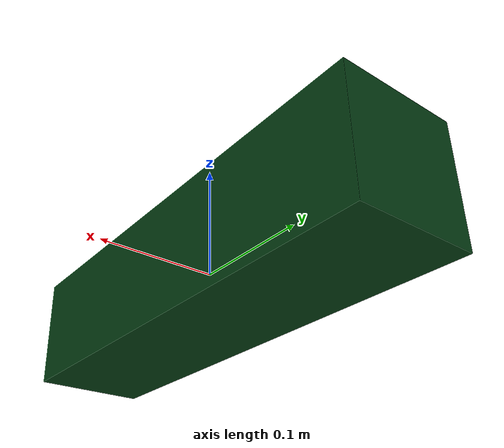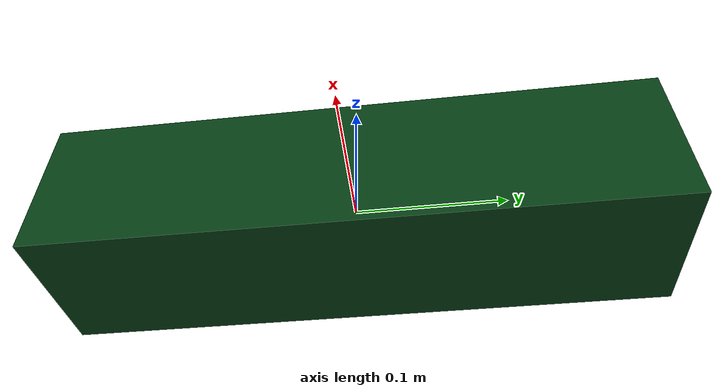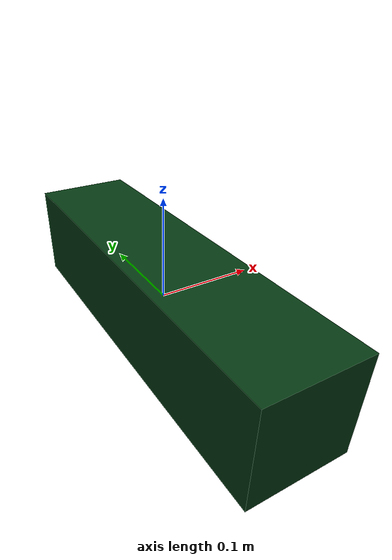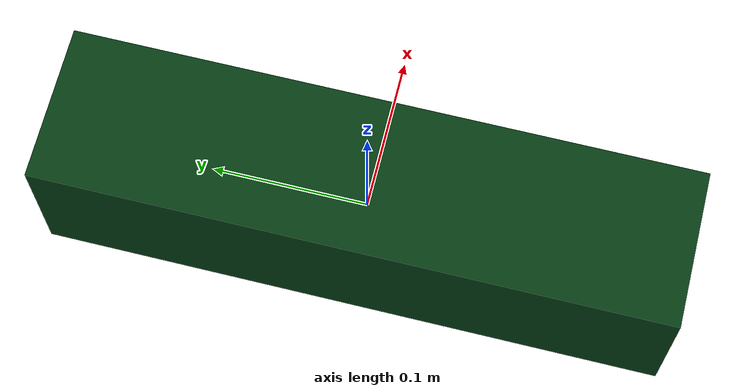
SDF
<?xml version="1.0" ?>
<sdf version="1.10">
    <model name="camera_sensor_model">

        <link name="camera">
        <pose >0.0 0 0.0 0 0 0</pose>
            <visual name='camera visual'>
                <pose>0 0 0 0 0 0</pose>
                <geometry>
                    <box>
                        <size>0.1 0.4 0.1</size>
                    </box>
                </geometry>
                <material>
                    <ambient>0.015996293361446288 0.22696587349938613 0.07036009568874305 1</ambient>
                    <diffuse>0.015996293361446288 0.22696587349938613 0.07036009568874305 1</diffuse>
                    <specular>0.1 0.1 0.1 1</specular>
                    <emissive>0 0 0 1</emissive>
                </material>
            </visual>
            <collision name='camera collision'>
                <pose>0.3 0 0 0.2 0 0</pose>
                <geometry>
                    <box>
                        <size>0.1 0.4 0.1</size>
                    </box>
                </geometry>
            </collision>
            <inertial>
                <mass>1</mass>
                <inertia>
                    <ixx>0.16666666666666666</ixx>
                    <ixy>0</ixy>
                    <ixz>0</ixz>
                    <iyy>0.16666666666666666</iyy>
                    <iyz>0</iyz>
                    <izz>0.16666666666666666</izz>
                </inertia>
            </inertial>
            <sensor name="camera" type="camera">
                <always_on>true</always_on>
                <visualize>true</visualize>
                <update_rate>30</update_rate>
                <topic>camera/image_raw</topic>
                <gz_frame_id>camera_rgb_frame</gz_frame_id>
                <camera name="intel_realsense_r200">
                <camera_info_topic>camera/camera_info</camera_info_topic>
                <horizontal_fov>1.02974</horizontal_fov>
                <image>
                    <width>1920</width>
                    <height>1080</height>
                    <format>R8G8B8</format>
                </image>
                <clip>
                    <near>0.02</near>
                    <far>300</far>
                </clip>
                <noise>
                    <type>gaussian</type>
                    <mean>0.0</mean>
                    <stddev>0.007</stddev>
                </noise>
                </camera>
        </sensor>
        </link>

    </model>

</sdf>
